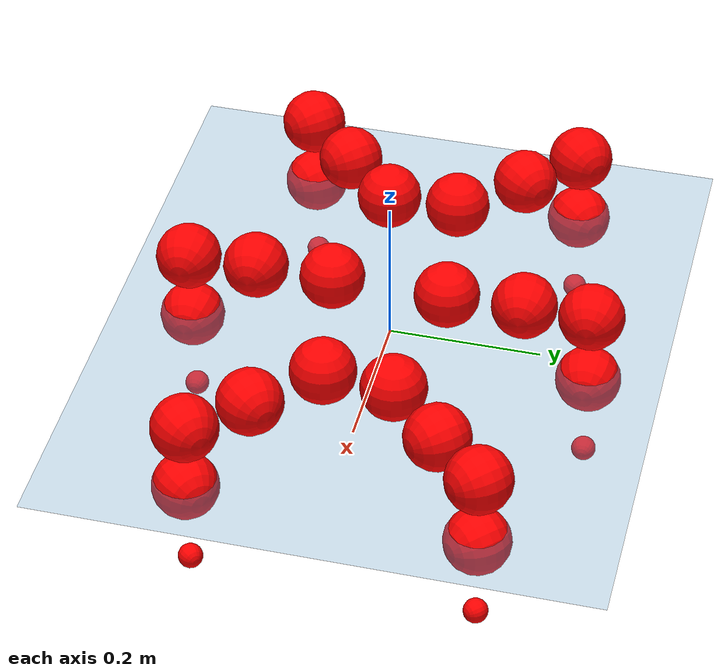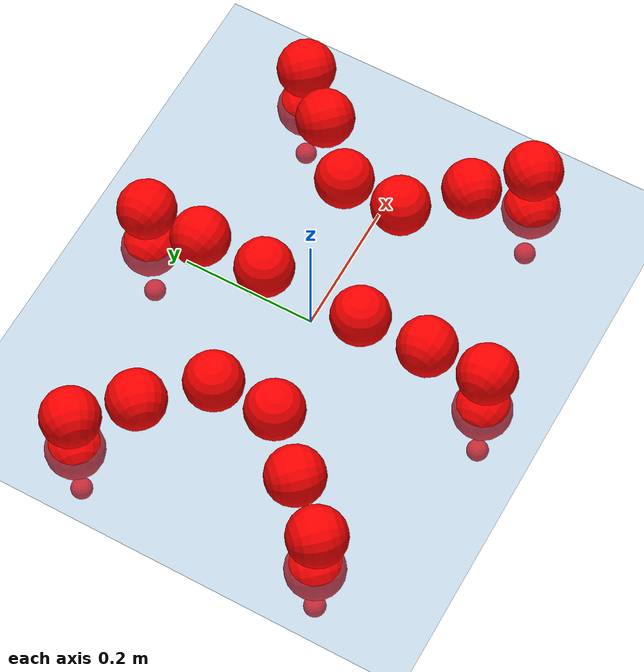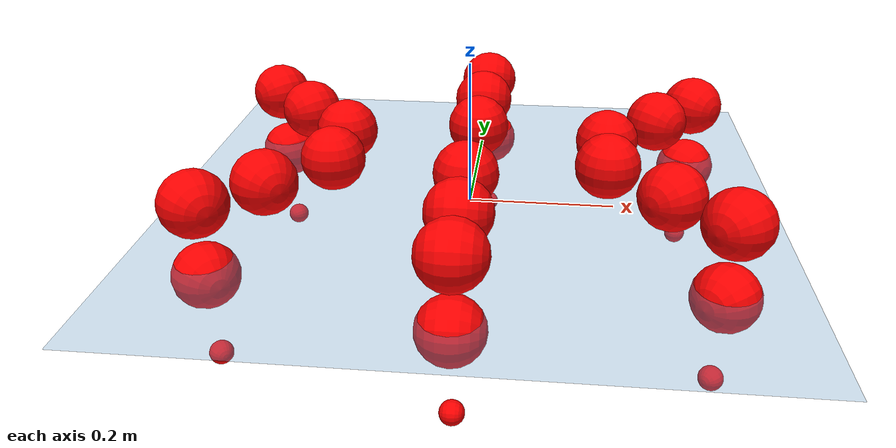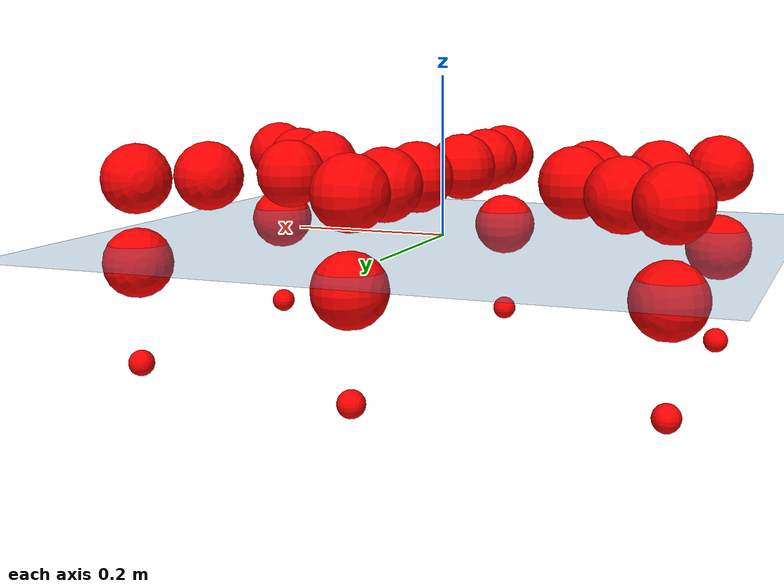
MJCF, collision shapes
<mujoco model="Golem">
  <compiler angle="radian" assetdir="assets" balanceinertia="true" inertiafromgeom="false"/>

  <option timestep="0.005" density="1.2" viscosity="2e-05"/>

  <size nkey="1"/>

  <visual>
    <quality shadowsize="8192"/>
    <map shadowclip="0.5"/>
  </visual>

  <default>
    <default class="/">
      <joint armature="0.01" damping="0.01" frictionloss="0.01"/>
      <geom contype="0" conaffinity="0" group="1" solref="-1000 -80"/>
      <site size="0.01 0.005 0.005" group="5"/>
      <general forcelimited="true" biastype="affine" gainprm="25" biasprm="0 -25 -0.5"/>
      <default class="visual">
        <geom type="mesh" group="2"/>
      </default>
      <default class="collision">
        <geom group="3"/>
      </default>
      <default class="foot">
        <geom size="0.01 0 0" condim="6" group="4" priority="1" solimp="0.015 1 0.01"/>
      </default>
      <default class="reward_collision_sphere">
        <geom group="5" rgba="1 0 0 1"/>
      </default>
    </default>
  </default>

  <asset>
    <texture type="skybox" colorspace="auto" name="//unnamed_texture_0" builtin="gradient" rgb1="0.95 0.95 0.95" rgb2="0.95 0.95 0.95" width="100" height="600"/>
    <texture type="2d" colorspace="auto" name="texplane" builtin="checker" rgb1="0.345 0.575 0.748" rgb2="0.345 0.575 0.748" markrgb="1 1 1" width="512" height="512"/>
    <material name="MatPlane" class="/" texture="texplane" texuniform="true" texrepeat="2 2" specular="0.9"/>
    <mesh name="body" class="/" file="body.stl" scale="0.001 0.001 0.001"/>
    <mesh name="coxa" class="/" file="coxa.stl" scale="0.001 0.001 0.001"/>
    <mesh name="femur" class="/" file="femur.stl" scale="0.001 0.001 0.001"/>
    <mesh name="tibia" class="/" file="tibia.stl" scale="0.001 0.001 0.001"/>
    <mesh name="tarsus" class="/" file="tarsus.stl" scale="0.001 0.001 0.001"/>
  </asset>

  <worldbody>
    <geom name="floor" class="/" size="100 100 0.125" type="plane" group="0" material="MatPlane"/>
    <light name="toplight_shadow" class="/" pos="0 0 5" dir="0.0990148 0.0990148 -0.990148" type="directional" ambient="0.04 0.04 0.04" diffuse="0.55 0.55 0.55" specular="0.12 0.12 0.12"/>
    <light name="toplight_fill" class="/" pos="0 0 5" dir="0.0990148 0.0990148 -0.990148" type="directional" castshadow="false" ambient="0.04 0.04 0.04" diffuse="0.3 0.3 0.3" specular="0.08 0.08 0.08"/>
    <body name="trunk" pos="0.00270523 0.00135487 0.000975618" quat="1 -1.53275e-05 6.51569e-06 -6.7175e-05">
      <inertial pos="-0.000530418 -0.00114565 -0.00139947" quat="0.999996 0.0020067 2.4329e-05 0.00191161" mass="4.54122" diaginertia="0.0201936 0.00414819 0.0273218"/>
      <joint name="//unnamed_joint_0" type="free"/>
      <geom name="//unnamed_geom_1" class="/" pos="0 0 0.0782758" quat="1 0 0 0" type="mesh" rgba="0.9 0.9 0.9 1" mesh="body"/>
      <site name="imu" class="/" pos="0.164379 0.0131949 0.118247" size="0.0107553"/>
      <camera name="track" class="/" pos="0 -1.68461 0" quat="0.707107 0.707107 0 0" mode="trackcom"/>
      <camera name="ego_camera" class="/" pos="0.150958 0 0.122306" quat="-0.5 -0.5 0.5 0.5"/>
      <body name="coxa_RR" pos="-0.2069 -0.0698875 0.0775569" quat="0.382492 3.28154e-05 -0.000119024 -0.923959">
        <inertial pos="-5.66071e-06 -0.00262698 0.000345687" quat="0.999949 -0.000633739 -0.0101007 0.000742774" mass="0.237377" diaginertia="0.0203344 0.0040783 0.0262506"/>
        <joint name="coxa_joint_RR" class="/" pos="0 0 0" axis="-0.00170549 0.00222461 -0.999996" range="-3.13529 3.13309" armature="0.00950719" damping="0" frictionloss="0.0107784"/>
        <geom name="//unnamed_geom_2" class="/" type="mesh" rgba="0.2 0.2 0.2 1" mesh="coxa"/>
        <geom name="//unnamed_geom_3" class="reward_collision_sphere" size="0.0430211" pos="-0.0348365 0 0"/>
        <body name="femur_RR" pos="0.0662326 -5.26011e-05 -0.00277527" quat="0.499965 -0.499943 0.50009 0.500002">
          <inertial pos="-0.000584687 0.00011328 -0.000459838" quat="0.999993 0.000285199 0.00299771 0.00219849" mass="0.24865" diaginertia="0.0210428 0.00418925 0.0281996"/>
          <joint name="femur_joint_RR" class="/" pos="0 0 0" axis="0.00460049 -0.00265396 -0.999986" range="-3.19201 3.09943" armature="0.0112851" damping="0.00738728" frictionloss="0.0121093"/>
          <geom name="//unnamed_geom_4" class="/" type="mesh" rgba="0.9 0.9 0.9 1" mesh="femur"/>
          <geom name="//unnamed_geom_5" class="reward_collision_sphere" size="0.0430211"/>
          <body name="tibia_RR" pos="-0.0033003 -0.0940853 0.00304087" quat="-0.000398035 0.999999 0.000321606 -0.00114486">
            <inertial pos="-0.00261595 0.00111471 -0.000608322" quat="0.999996 0.000905515 0.00190175 0.00167829" mass="0.251595" diaginertia="0.0208086 0.00421331 0.0263575"/>
            <joint name="tibia_joint_RR" class="/" pos="0 0 0" axis="0.0115121 0.000840608 0.999933" range="-3.13377 3.16871" armature="0.0112433" damping="0.00048037" frictionloss="0.0107981"/>
            <geom name="//unnamed_geom_6" class="/" type="mesh" rgba="0.2 0.2 0.2 1" mesh="tibia"/>
            <geom name="//unnamed_geom_7" class="reward_collision_sphere" size="0.0430211"/>
            <body name="tarsus_RR" pos="0.103654 0.000232522 0.00206276" quat="1 0.000144673 8.29354e-05 -0.000101323">
              <inertial pos="0.0731651 0.000440862 0.000469931" quat="0.496121 0.500631 0.503121 0.500101" mass="0.248803" diaginertia="0.0209529 0.00427999 0.02751"/>
              <joint name="tarsus_joint_RR" class="/" pos="0 0 0" axis="0.00200234 -0.00015215 0.999998" range="-3.19066 3.17275" armature="0.0112502" damping="0.0443848" frictionloss="0.0104508"/>
              <geom name="//unnamed_geom_8" class="/" type="mesh" rgba="0.9 0.9 0.9 1" mesh="tarsus"/>
              <geom name="foot_1" class="foot" size="0.0107744" pos="0.130056 0 0" quat="0 -0.707107 0 0.707107"/>
              <geom name="//unnamed_geom_10" class="reward_collision_sphere" size="0.0430211"/>
              <geom name="//unnamed_geom_11" class="reward_collision_sphere" size="0.0161329" pos="0.124831 0 0"/>
              <site name="foot_1" class="foot" pos="0.130056 0 0" quat="0 -0.707107 0 0.707107" size="0.0107553"/>
            </body>
          </body>
        </body>
      </body>
      <body name="coxa_RM" pos="-0.000763167 -0.112624 0.0793829" quat="0.706775 -5.69652e-05 0.000658997 -0.707438">
        <inertial pos="0.00226249 -0.000200453 9.05822e-05" quat="0.999998 -0.000391451 -0.00117869 -0.00132892" mass="0.247954" diaginertia="0.0208592 0.00409414 0.0279721"/>
        <joint name="coxa_joint_RM" class="/" pos="0 0 0" axis="0.00111392 -0.00230698 -0.999997" stiffness="0.00287924" range="-3.13407 3.12089" armature="0.0108759" damping="0.00118896" frictionloss="0.00940847"/>
        <geom name="//unnamed_geom_12" class="/" type="mesh" rgba="0.2 0.2 0.2 1" mesh="coxa"/>
        <geom name="//unnamed_geom_13" class="reward_collision_sphere" size="0.0430211" pos="-0.0348365 0 0"/>
        <body name="femur_RM" pos="0.0670857 0.00212786 0.00051289" quat="0.500491 -0.500071 0.500552 0.498884">
          <inertial pos="-0.00105085 -0.000250406 -9.75962e-05" quat="0.999998 -0.00139611 -0.00163121 0.000219263" mass="0.255414" diaginertia="0.0218284 0.00424639 0.0282441"/>
          <joint name="femur_joint_RM" class="/" pos="0 0 0" axis="-0.00438735 -0.00453144 -0.99998" stiffness="0.00187067" range="-3.14104 3.14139" armature="0.0104682" damping="0.0209589" frictionloss="0.0107404"/>
          <geom name="//unnamed_geom_14" class="/" type="mesh" rgba="0.9 0.9 0.9 1" mesh="femur"/>
          <geom name="//unnamed_geom_15" class="reward_collision_sphere" size="0.0430211"/>
          <body name="tibia_RM" pos="0.000526039 -0.0906959 0.00239086" quat="5.28897e-05 1 0.000201343 -0.000106461">
            <inertial pos="0.00194616 -0.00284841 0.000629959" quat="0.999912 -0.0101281 0.00813497 -0.00286502" mass="0.241645" diaginertia="0.0211192 0.00439801 0.0277861"/>
            <joint name="tibia_joint_RM" class="/" pos="0 0 0" axis="-0.00163598 -0.000257434 0.999999" range="-3.19312 3.18934" armature="0.0105935" damping="0.0164116" frictionloss="0.0101853"/>
            <geom name="//unnamed_geom_16" class="/" type="mesh" rgba="0.2 0.2 0.2 1" mesh="tibia"/>
            <geom name="//unnamed_geom_17" class="reward_collision_sphere" size="0.0430211"/>
            <body name="tarsus_RM" pos="0.101678 0.000300181 0.00216156" quat="1 -4.2933e-05 2.50918e-05 0.000183183">
              <inertial pos="0.0687057 -0.00131815 0.00248505" quat="0.504658 0.488751 0.505671 0.500739" mass="0.256697" diaginertia="0.0203778 0.00415781 0.0265081"/>
              <joint name="tarsus_joint_RM" class="/" pos="0 0 0" axis="0.00237565 -0.000518515 0.999997" range="-3.10677 3.15605" armature="0.0108631" damping="0.00515176" frictionloss="0.0107648"/>
              <geom name="//unnamed_geom_18" class="/" type="mesh" rgba="0.9 0.9 0.9 1" mesh="tarsus"/>
              <geom name="foot_2" class="foot" size="0.0104328" pos="0.130056 0 0" quat="0 -0.707107 0 0.707107"/>
              <geom name="//unnamed_geom_20" class="reward_collision_sphere" size="0.0430211"/>
              <geom name="//unnamed_geom_21" class="reward_collision_sphere" size="0.0161329" pos="0.124831 0 0"/>
              <site name="foot_2" class="foot" pos="0.130056 0 0" quat="0 -0.707107 0 0.707107" size="0.0107553"/>
            </body>
          </body>
        </body>
      </body>
      <body name="coxa_RF" pos="0.205779 -0.0674202 0.0811093" quat="0.923904 -3.2024e-05 0.000270477 -0.382624">
        <inertial pos="0.000857543 0.00111212 0.00076339" quat="0.999999 -0.000421609 0.000466699 -0.000814006" mass="0.246709" diaginertia="0.0210597 0.00417926 0.0270738"/>
        <joint name="coxa_joint_RF" class="/" pos="0 0 0" axis="-0.000680687 -0.0016984 -0.999998" stiffness="0.000903657" range="-3.12723 3.11807" armature="0.0121287" damping="0.00245982" frictionloss="0.0108807"/>
        <geom name="//unnamed_geom_22" class="/" type="mesh" rgba="0.2 0.2 0.2 1" mesh="coxa"/>
        <geom name="//unnamed_geom_23" class="reward_collision_sphere" size="0.0430211" pos="-0.0348365 0 0"/>
        <body name="femur_RF" pos="0.0695184 0.000146089 -0.00173807" quat="0.499975 -0.499961 0.500126 0.499939">
          <inertial pos="0.000159563 -0.00185099 0.00065581" quat="1 -0.000351826 -0.000451215 -0.000478419" mass="0.247926" diaginertia="0.0211119 0.00413509 0.0281126"/>
          <joint name="femur_joint_RF" class="/" pos="0 0 0" axis="-0.000560922 -0.000443365 -1" stiffness="0.00491525" range="-3.19355 3.12391" armature="0.00924225" damping="0.00863445" frictionloss="0.012007"/>
          <geom name="//unnamed_geom_24" class="/" type="mesh" rgba="0.9 0.9 0.9 1" mesh="femur"/>
          <geom name="//unnamed_geom_25" class="reward_collision_sphere" size="0.0430211"/>
          <body name="tibia_RF" pos="-0.00284931 -0.0923033 0.00201929" quat="-0.000201368 1 0.00022423 0.000255823">
            <inertial pos="-0.002457 -0.000293139 0.00109256" quat="1 0.000755905 -0.000296471 -2.48806e-05" mass="0.253771" diaginertia="0.0204761 0.00426503 0.0271074"/>
            <joint name="tibia_joint_RF" class="/" pos="0 0 0" axis="-0.00166441 -0.0120188 0.999926" range="-3.11953 3.08467" armature="0.0109159" damping="0.0121983" frictionloss="0.0107754"/>
            <geom name="//unnamed_geom_26" class="/" type="mesh" rgba="0.2 0.2 0.2 1" mesh="tibia"/>
            <geom name="//unnamed_geom_27" class="reward_collision_sphere" size="0.0430211"/>
            <body name="tarsus_RF" pos="0.0996064 0.00232032 0.00318458" quat="0.999999 -0.00112192 0.000772388 0.000283671">
              <inertial pos="0.0693808 -0.000991644 0.000195265" quat="0.49927 0.501709 0.50078 0.498233" mass="0.249758" diaginertia="0.0208907 0.00430507 0.0278614"/>
              <joint name="tarsus_joint_RF" class="/" pos="0 0 0" axis="-0.000609545 -0.0105304 0.999944" range="-3.13745 3.15855" armature="0.0115034" damping="0.00899315" frictionloss="0.0103465"/>
              <geom name="//unnamed_geom_28" class="/" type="mesh" rgba="0.9 0.9 0.9 1" mesh="tarsus"/>
              <geom name="foot_3" class="foot" size="0.0115518" pos="0.130056 0 0" quat="0 -0.707107 0 0.707107"/>
              <geom name="//unnamed_geom_30" class="reward_collision_sphere" size="0.0430211"/>
              <geom name="//unnamed_geom_31" class="reward_collision_sphere" size="0.0161329" pos="0.124831 0 0"/>
              <site name="foot_3" class="foot" pos="0.130056 0 0" quat="0 -0.707107 0 0.707107" size="0.0107553"/>
            </body>
          </body>
        </body>
      </body>
      <body name="coxa_LR" pos="-0.209127 0.0726424 0.0777687" quat="0.382692 -3.35651e-05 3.14766e-05 0.923876">
        <inertial pos="-0.00254692 0.000374153 -0.0018874" quat="0.99991 0.00455362 -0.000566197 0.012598" mass="0.24933" diaginertia="0.0218171 0.00448909 0.0278564"/>
        <joint name="coxa_joint_LR" class="/" pos="0 0 0" axis="-0.0163316 -0.00307456 -0.999862" stiffness="0.00429771" range="-3.12093 3.12142" armature="0.0100525" damping="0.0131543" frictionloss="0.00945459"/>
        <geom name="//unnamed_geom_32" class="/" type="mesh" rgba="0.2 0.2 0.2 1" mesh="coxa"/>
        <geom name="//unnamed_geom_33" class="reward_collision_sphere" size="0.0430211" pos="-0.0348365 0 0"/>
        <body name="femur_LR" pos="0.072325 -0.00265804 -0.00275704" quat="0.500011 -0.499985 0.49998 0.500023">
          <inertial pos="7.52977e-05 -0.000276828 -0.000189064" quat="0.999985 -0.00542573 9.35105e-05 0.000566881" mass="0.249066" diaginertia="0.0212278 0.00439561 0.0274955"/>
          <joint name="femur_joint_LR" class="/" pos="0 0 0" axis="-0.00295118 -0.00766583 0.999966" range="-3.15586 3.13444" armature="0.0101553" damping="0.00445221" frictionloss="0.00933856"/>
          <geom name="//unnamed_geom_34" class="/" type="mesh" rgba="0.9 0.9 0.9 1" mesh="femur"/>
          <geom name="//unnamed_geom_35" class="reward_collision_sphere" size="0.0430211"/>
          <body name="tibia_LR" pos="-0.00115889 -0.091994 0.00180953" quat="0.0012671 0.999999 2.02824e-05 0.00060049">
            <inertial pos="0.000216218 0.000645413 -2.7008e-05" quat="0.99999 0.00310634 0.00325274 -0.000705695" mass="0.249084" diaginertia="0.0214118 0.00432256 0.0277726"/>
            <joint name="tibia_joint_LR" class="/" pos="0 0 0" axis="-0.00159291 0.00239558 -0.999996" range="-3.15667 3.09128" armature="0.0107313" damping="0.009569" frictionloss="0.0108227"/>
            <geom name="//unnamed_geom_36" class="/" type="mesh" rgba="0.2 0.2 0.2 1" mesh="tibia"/>
            <geom name="//unnamed_geom_37" class="reward_collision_sphere" size="0.0430211"/>
            <body name="tarsus_LR" pos="0.100854 0.000142331 0.00282638" quat="0.999999 0.00105277 -0.000955313 0.000112666">
              <inertial pos="0.0732657 0.000329347 -0.00251484" quat="0.49928 0.50093 0.499387 0.5004" mass="0.241684" diaginertia="0.0208603 0.00409362 0.027099"/>
              <joint name="tarsus_joint_LR" class="/" pos="0 0 0" axis="0.00781224 -0.0053748 -0.999955" stiffness="0.00107791" range="-3.19067 3.0881" armature="0.0106452" damping="0" frictionloss="0.0105194"/>
              <geom name="//unnamed_geom_38" class="/" type="mesh" rgba="0.9 0.9 0.9 1" mesh="tarsus"/>
              <geom name="foot_4" class="foot" size="0.0113515" pos="0.130056 0 0" quat="0.707107 0 -0.707107 0"/>
              <geom name="//unnamed_geom_40" class="reward_collision_sphere" size="0.0430211"/>
              <geom name="//unnamed_geom_41" class="reward_collision_sphere" size="0.0161329" pos="0.124831 0 0"/>
              <site name="foot_4" class="foot" pos="0.130056 0 0" quat="0.707107 0 -0.707107 0" size="0.0107553"/>
            </body>
          </body>
        </body>
      </body>
      <body name="coxa_LM" pos="0.00204672 0.109827 0.080299" quat="0.707025 -0.000383113 0.000316702 0.707189">
        <inertial pos="-0.00067503 0.000338371 0.000184373" quat="0.999965 0.00603434 -0.00373871 0.00452469" mass="0.250202" diaginertia="0.0209471 0.00422934 0.0274287"/>
        <joint name="coxa_joint_LM" class="/" pos="0 0 0" axis="-0.00333238 -0.00319273 -0.999989" range="-3.08858 3.14346" armature="0.0109996" damping="0.0131159" frictionloss="0.0120449"/>
        <geom name="//unnamed_geom_42" class="/" type="mesh" rgba="0.2 0.2 0.2 1" mesh="coxa"/>
        <geom name="//unnamed_geom_43" class="reward_collision_sphere" size="0.0430211" pos="-0.0348365 0 0"/>
        <body name="femur_LM" pos="0.0665775 0.000799257 0.00127337" quat="0.499361 -0.500551 0.500131 0.499957">
          <inertial pos="0.000496919 -0.00276307 0.00261108" quat="0.999908 -0.00254957 0.00220617 0.0131102" mass="0.246036" diaginertia="0.0210946 0.00405835 0.0269626"/>
          <joint name="femur_joint_LM" class="/" pos="0 0 0" axis="0.0100705 0.00449559 0.999939" range="-3.13514 3.09065" armature="0.0113743" damping="0.00362111" frictionloss="0.0105745"/>
          <geom name="//unnamed_geom_44" class="/" type="mesh" rgba="0.9 0.9 0.9 1" mesh="femur"/>
          <geom name="//unnamed_geom_45" class="reward_collision_sphere" size="0.0430211"/>
          <body name="tibia_LM" pos="-0.000416652 -0.0877953 -0.0021759" quat="0.00106537 0.999999 0.000436445 0.000771753">
            <inertial pos="-0.000937397 -0.00339947 -0.000575931" quat="0.999961 0.00340138 -0.00434051 -0.00687433" mass="0.249586" diaginertia="0.0209451 0.00437619 0.0271431"/>
            <joint name="tibia_joint_LM" class="/" pos="0 0 0" axis="-0.0020652 -0.00542001 -0.999983" stiffness="0.000189378" range="-3.14153 3.12454" armature="0.0120687" damping="0" frictionloss="0.0102448"/>
            <geom name="//unnamed_geom_46" class="/" type="mesh" rgba="0.2 0.2 0.2 1" mesh="tibia"/>
            <geom name="//unnamed_geom_47" class="reward_collision_sphere" size="0.0430211"/>
            <body name="tarsus_LM" pos="0.104795 0.000753144 0.00116565" quat="0.999999 0.00100678 0.000773426 -2.03448e-06">
              <inertial pos="0.0678648 -0.000177059 -0.000863697" quat="0.499912 0.499945 0.499997 0.500146" mass="0.246317" diaginertia="0.0204493 0.00415576 0.027191"/>
              <joint name="tarsus_joint_LM" class="/" pos="0 0 0" axis="0.000109277 -0.0012035 -0.999999" range="-3.08668 3.11853" armature="0.0121888" damping="0.000765033" frictionloss="0.0107255"/>
              <geom name="//unnamed_geom_48" class="/" type="mesh" rgba="0.9 0.9 0.9 1" mesh="tarsus"/>
              <geom name="foot_5" class="foot" size="0.0107976" pos="0.130056 0 0" quat="0.707107 0 -0.707107 0"/>
              <geom name="//unnamed_geom_50" class="reward_collision_sphere" size="0.0430211"/>
              <geom name="//unnamed_geom_51" class="reward_collision_sphere" size="0.0161329" pos="0.124831 0 0"/>
              <site name="foot_5" class="foot" pos="0.130056 0 0" quat="0.707107 0 -0.707107 0" size="0.0107553"/>
            </body>
          </body>
        </body>
      </body>
      <body name="coxa_LF" pos="0.209334 0.0733321 0.0756632" quat="0.923818 -0.000111774 -8.08737e-05 0.382832">
        <inertial pos="-0.000142001 0.000279089 0.000274803" quat="0.999953 -0.00498137 -0.00622192 -0.0055674" mass="0.236739" diaginertia="0.0204904 0.00409558 0.0266922"/>
        <joint name="coxa_joint_LF" class="/" pos="0 0 0" axis="-0.00208083 0.00337914 -0.999992" stiffness="0.00171143" range="-3.14608 3.19044" armature="0.0120706" damping="0.00453409" frictionloss="0.0097678"/>
        <geom name="//unnamed_geom_52" class="/" type="mesh" rgba="0.2 0.2 0.2 1" mesh="coxa"/>
        <geom name="//unnamed_geom_53" class="reward_collision_sphere" size="0.0430211" pos="-0.0348365 0 0"/>
        <body name="femur_LF" pos="0.0699365 -0.0022381 0.00126102" quat="0.500327 -0.498982 0.499934 0.500755">
          <inertial pos="0.00261513 -8.18579e-05 0.000306729" quat="0.999989 -0.00162552 -0.00445107 0.00058134" mass="0.254684" diaginertia="0.0213982 0.00427399 0.0270915"/>
          <joint name="femur_joint_LF" class="/" pos="0 0 0" axis="0.000144035 -0.000175407 1" range="-3.10833 3.11794" armature="0.0121828" damping="0.0176182" frictionloss="0.011298"/>
          <geom name="//unnamed_geom_54" class="/" type="mesh" rgba="0.9 0.9 0.9 1" mesh="femur"/>
          <geom name="//unnamed_geom_55" class="reward_collision_sphere" size="0.0430211"/>
          <body name="tibia_LF" pos="-0.000745203 -0.0889845 0.00250183" quat="-2.88856e-05 1 5.05921e-05 -2.6805e-05">
            <inertial pos="1.72251e-05 0.00238738 0.000208801" quat="0.99999 -0.000565376 -0.000470611 0.00432568" mass="0.246671" diaginertia="0.0212753 0.00423067 0.0272843"/>
            <joint name="tibia_joint_LF" class="/" pos="0 0 0" axis="0.00217204 -0.00435796 -0.999988" range="-3.1382 3.14009" armature="0.00985716" damping="0" frictionloss="0.0111645"/>
            <geom name="//unnamed_geom_56" class="/" type="mesh" rgba="0.2 0.2 0.2 1" mesh="tibia"/>
            <geom name="//unnamed_geom_57" class="reward_collision_sphere" size="0.0430211"/>
            <body name="tarsus_LF" pos="0.102529 0.0012054 0.000443777" quat="0.999999 -0.000497805 0.0010508 0.000708215">
              <inertial pos="0.0716389 0.000566635 -0.000562241" quat="0.4968 0.496375 0.497678 0.509037" mass="0.249087" diaginertia="0.0209133 0.00431924 0.0273028"/>
              <joint name="tarsus_joint_LF" class="/" pos="0 0 0" axis="0.00259873 -0.000127736 -0.999997" stiffness="0.0254165" range="-3.18459 3.14912" armature="0.0106125" damping="0.028915" frictionloss="0.0106794"/>
              <geom name="//unnamed_geom_58" class="/" type="mesh" rgba="0.9 0.9 0.9 1" mesh="tarsus"/>
              <geom name="foot_6" class="foot" size="0.0106441" pos="0.130056 0 0" quat="0.707107 0 -0.707107 0"/>
              <geom name="//unnamed_geom_60" class="reward_collision_sphere" size="0.0430211"/>
              <geom name="//unnamed_geom_61" class="reward_collision_sphere" size="0.0161329" pos="0.124831 0 0"/>
              <site name="foot_6" class="foot" pos="0.130056 0 0" quat="0.707107 0 -0.707107 0" size="0.0107553"/>
            </body>
          </body>
        </body>
      </body>
    </body>
  </worldbody>

  <contact>
    <pair class="/" geom1="floor" geom2="foot_1" name="//unnamed_contact_0"/>
    <pair class="/" geom1="floor" geom2="foot_2" name="//unnamed_contact_1"/>
    <pair class="/" geom1="floor" geom2="foot_3" name="//unnamed_contact_2"/>
    <pair class="/" geom1="floor" geom2="foot_4" name="//unnamed_contact_3"/>
    <pair class="/" geom1="floor" geom2="foot_5" name="//unnamed_contact_4"/>
    <pair class="/" geom1="floor" geom2="foot_6" name="//unnamed_contact_5"/>
  </contact>

  <actuator>
    <general name="coxa_joint_RR" class="/" joint="coxa_joint_RR" forcerange="-7.76013 7.76013" gainprm="25.6477" biasprm="0 -25.6477 -0.586068"/>
    <general name="femur_joint_RR" class="/" joint="femur_joint_RR" forcerange="-7.78626 7.78626" gainprm="25.6477" biasprm="0 -25.6477 -0.586068"/>
    <general name="tibia_joint_RR" class="/" joint="tibia_joint_RR" forcerange="-7.78411 7.78411" gainprm="25.6477" biasprm="0 -25.6477 -0.586068"/>
    <general name="tarsus_joint_RR" class="/" joint="tarsus_joint_RR" forcerange="-8.51899 8.51899" gainprm="25.6477" biasprm="0 -25.6477 -0.586068"/>
    <general name="coxa_joint_RM" class="/" joint="coxa_joint_RM" forcerange="-7.06119 7.06119" gainprm="25.6477" biasprm="0 -25.6477 -0.586068"/>
    <general name="femur_joint_RM" class="/" joint="femur_joint_RM" forcerange="-8.16522 8.16522" gainprm="25.6477" biasprm="0 -25.6477 -0.586068"/>
    <general name="tibia_joint_RM" class="/" joint="tibia_joint_RM" forcerange="-7.40542 7.40542" gainprm="25.6477" biasprm="0 -25.6477 -0.586068"/>
    <general name="tarsus_joint_RM" class="/" joint="tarsus_joint_RM" forcerange="-7.80073 7.80073" gainprm="25.6477" biasprm="0 -25.6477 -0.586068"/>
    <general name="coxa_joint_RF" class="/" joint="coxa_joint_RF" forcerange="-7.05403 7.05403" gainprm="25.6477" biasprm="0 -25.6477 -0.586068"/>
    <general name="femur_joint_RF" class="/" joint="femur_joint_RF" forcerange="-7.53729 7.53729" gainprm="25.6477" biasprm="0 -25.6477 -0.586068"/>
    <general name="tibia_joint_RF" class="/" joint="tibia_joint_RF" forcerange="-7.07892 7.07892" gainprm="25.6477" biasprm="0 -25.6477 -0.586068"/>
    <general name="tarsus_joint_RF" class="/" joint="tarsus_joint_RF" forcerange="-8.10009 8.10009" gainprm="25.6477" biasprm="0 -25.6477 -0.586068"/>
    <general name="coxa_joint_LR" class="/" joint="coxa_joint_LR" forcerange="-7.87032 7.87032" gainprm="25.6477" biasprm="0 -25.6477 -0.586068"/>
    <general name="femur_joint_LR" class="/" joint="femur_joint_LR" forcerange="-8.00287 8.00287" gainprm="25.6477" biasprm="0 -25.6477 -0.586068"/>
    <general name="tibia_joint_LR" class="/" joint="tibia_joint_LR" forcerange="-7.70217 7.70217" gainprm="25.6477" biasprm="0 -25.6477 -0.586068"/>
    <general name="tarsus_joint_LR" class="/" joint="tarsus_joint_LR" forcerange="-7.73349 7.73349" gainprm="25.6477" biasprm="0 -25.6477 -0.586068"/>
    <general name="coxa_joint_LM" class="/" joint="coxa_joint_LM" forcerange="-8.58775 8.58775" gainprm="25.6477" biasprm="0 -25.6477 -0.586068"/>
    <general name="femur_joint_LM" class="/" joint="femur_joint_LM" forcerange="-7.86012 7.86012" gainprm="25.6477" biasprm="0 -25.6477 -0.586068"/>
    <general name="tibia_joint_LM" class="/" joint="tibia_joint_LM" forcerange="-7.87185 7.87185" gainprm="25.6477" biasprm="0 -25.6477 -0.586068"/>
    <general name="tarsus_joint_LM" class="/" joint="tarsus_joint_LM" forcerange="-7.99673 7.99673" gainprm="25.6477" biasprm="0 -25.6477 -0.586068"/>
    <general name="coxa_joint_LF" class="/" joint="coxa_joint_LF" forcerange="-7.09161 7.09161" gainprm="25.6477" biasprm="0 -25.6477 -0.586068"/>
    <general name="femur_joint_LF" class="/" joint="femur_joint_LF" forcerange="-7.97433 7.97433" gainprm="25.6477" biasprm="0 -25.6477 -0.586068"/>
    <general name="tibia_joint_LF" class="/" joint="tibia_joint_LF" forcerange="-7.53609 7.53609" gainprm="25.6477" biasprm="0 -25.6477 -0.586068"/>
    <general name="tarsus_joint_LF" class="/" joint="tarsus_joint_LF" forcerange="-7.5238 7.5238" gainprm="25.6477" biasprm="0 -25.6477 -0.586068"/>
  </actuator>

  <sensor>
    <gyro site="imu" name="imu_angular_velocity"/>
    <velocimeter site="imu" name="imu_linear_velocity"/>
    <framelinvel objtype="site" objname="foot_1" name="foot_1_global_linear_velocity"/>
    <framelinvel objtype="site" objname="foot_2" name="foot_2_global_linear_velocity"/>
    <framelinvel objtype="site" objname="foot_3" name="foot_3_global_linear_velocity"/>
    <framelinvel objtype="site" objname="foot_4" name="foot_4_global_linear_velocity"/>
    <framelinvel objtype="site" objname="foot_5" name="foot_5_global_linear_velocity"/>
    <framelinvel objtype="site" objname="foot_6" name="foot_6_global_linear_velocity"/>
  </sensor>

  <keyframe>
    <key name="home" qpos="0 0 0.1457 1 0 0 0 0 0 0 0 0 0 0 0 0 0 0 0 0 0 0 0 0 0 0 0 0 0 0 0"/>
  </keyframe>
</mujoco>
